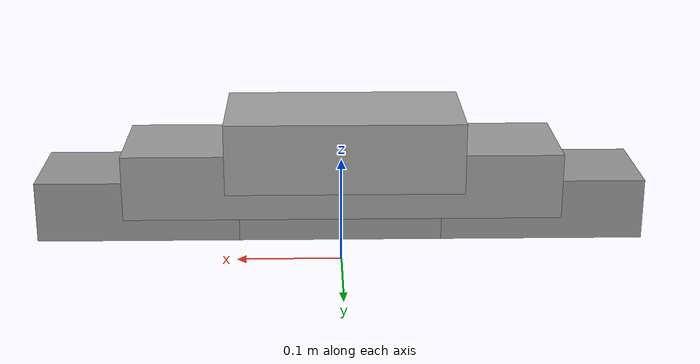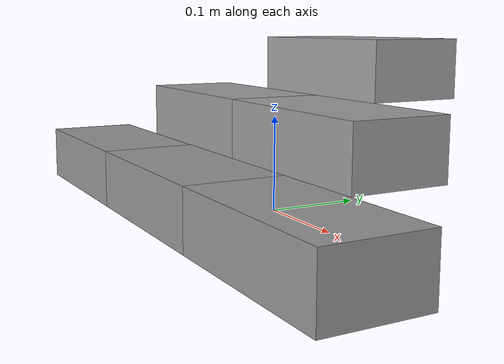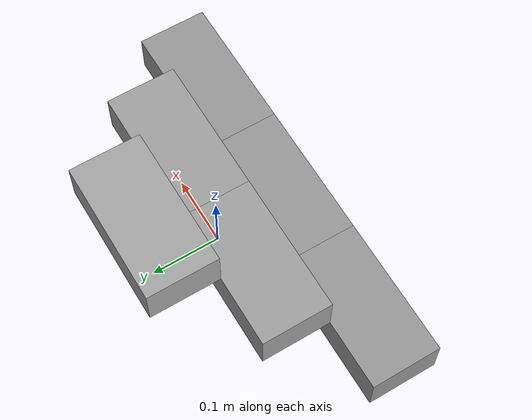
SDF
<?xml version="1.0"?>
<sdf version="1.7">
  <model name="gray_brick_pile">
    <static>true</static>
    <pose>0 0 0 0 0 0</pose>

    <link name="brick_pile_link">

      <!-- =================
           Collision (전체 더미)
           ================= -->
      <collision name="col_pile">
        <pose>0 0 0.18 0 0 0</pose>
        <geometry>
          <box>
            <size>0.70 0.50 0.36</size>
          </box>
        </geometry>
      </collision>

      <!-- =================
           Visual bricks
           ================= -->

      <!-- 공통 회색 벽돌 재질 -->
      <!-- ambient/diffuse/specular로 콘크리트 느낌 -->

      <!-- Layer 1 -->
      <visual name="brick_1_1">
        <pose>-0.20 -0.10 0.03 0 0 0</pose>
        <geometry><box><size>0.20 0.10 0.06</size></box></geometry>
        <material>
          <ambient>0.55 0.55 0.55 1</ambient>
          <diffuse>0.60 0.60 0.60 1</diffuse>
          <specular>0.05 0.05 0.05 1</specular>
          <shininess>5</shininess>
        </material>
      </visual>

      <visual name="brick_1_2">
        <pose>0.00 -0.10 0.03 0 0 0</pose>
        <geometry><box><size>0.20 0.10 0.06</size></box></geometry>
        <material>
          <ambient>0.55 0.55 0.55 1</ambient>
          <diffuse>0.60 0.60 0.60 1</diffuse>
          <specular>0.05 0.05 0.05 1</specular>
          <shininess>5</shininess>
        </material>
      </visual>

      <visual name="brick_1_3">
        <pose>0.20 -0.10 0.03 0 0 0</pose>
        <geometry><box><size>0.20 0.10 0.06</size></box></geometry>
        <material>
          <ambient>0.55 0.55 0.55 1</ambient>
          <diffuse>0.60 0.60 0.60 1</diffuse>
          <specular>0.05 0.05 0.05 1</specular>
          <shininess>5</shininess>
        </material>
      </visual>

      <!-- Layer 2 -->
      <visual name="brick_2_1">
        <pose>-0.10 0.00 0.09 0 0 0</pose>
        <geometry><box><size>0.20 0.10 0.06</size></box></geometry>
        <material>
          <ambient>0.58 0.58 0.58 1</ambient>
          <diffuse>0.63 0.63 0.63 1</diffuse>
          <specular>0.05 0.05 0.05 1</specular>
          <shininess>5</shininess>
        </material>
      </visual>

      <visual name="brick_2_2">
        <pose>0.10 0.00 0.09 0 0 0</pose>
        <geometry><box><size>0.20 0.10 0.06</size></box></geometry>
        <material>
          <ambient>0.58 0.58 0.58 1</ambient>
          <diffuse>0.63 0.63 0.63 1</diffuse>
          <specular>0.05 0.05 0.05 1</specular>
          <shininess>5</shininess>
        </material>
      </visual>

      <!-- Layer 3 -->
      <visual name="brick_3_1">
        <pose>0 0.10 0.15 0 0 0</pose>
        <geometry><box><size>0.20 0.10 0.06</size></box></geometry>
        <material>
          <ambient>0.60 0.60 0.60 1</ambient>
          <diffuse>0.65 0.65 0.65 1</diffuse>
          <specular>0.05 0.05 0.05 1</specular>
          <shininess>5</shininess>
        </material>
      </visual>

    </link>
  </model>
</sdf>
